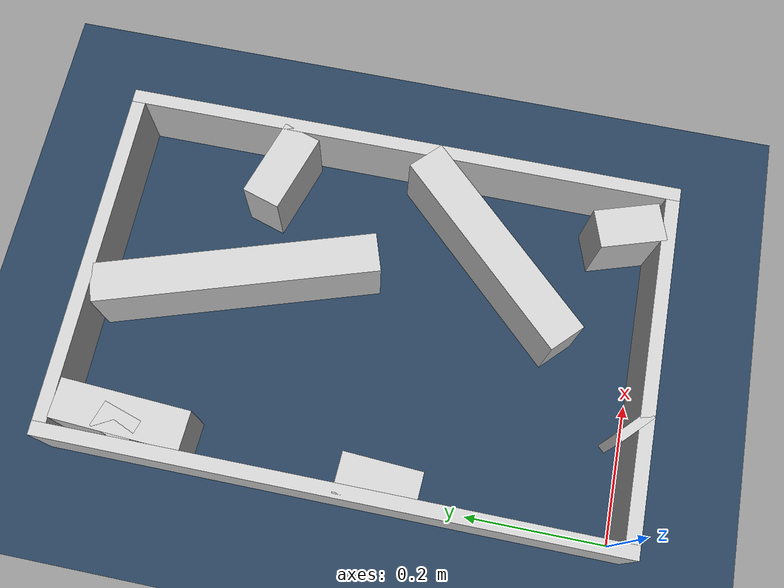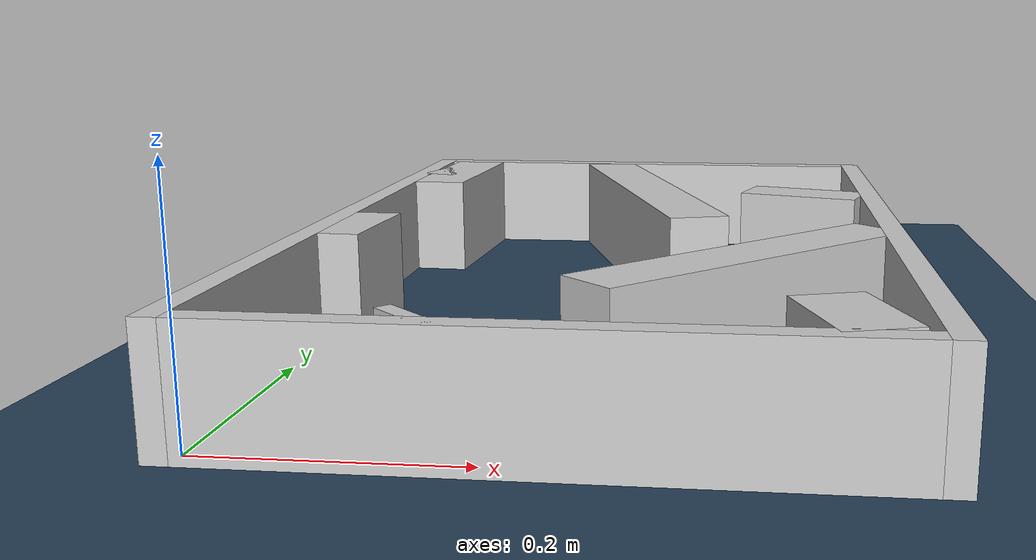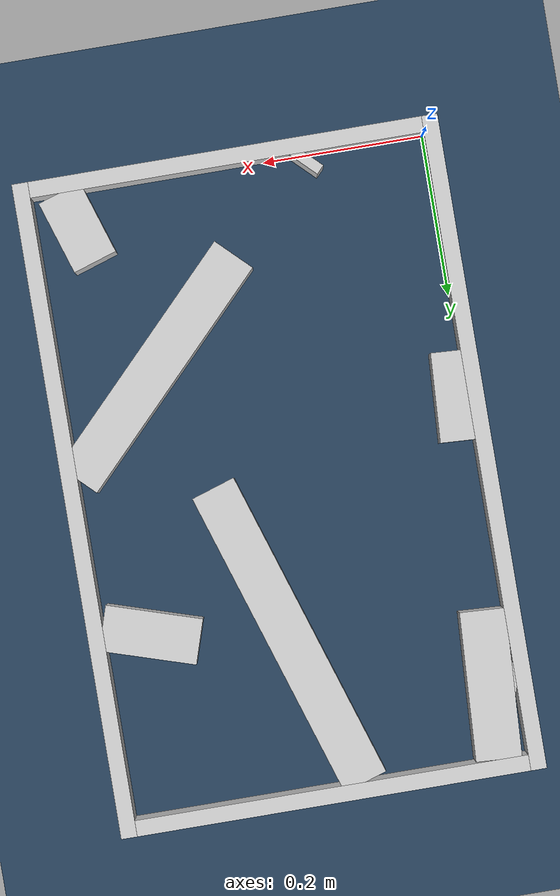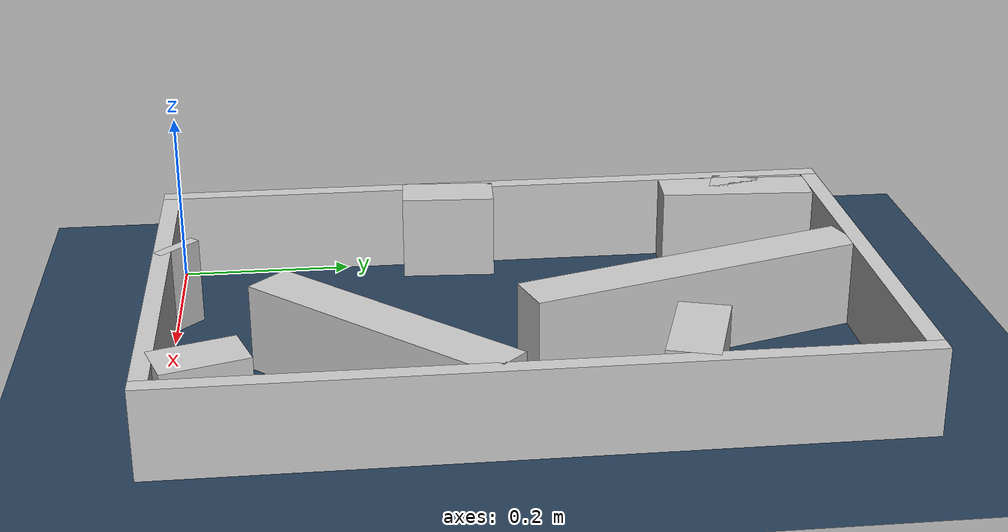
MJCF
<?xml version="1.0" ?>
<mujoco model="generated_real_template">
  <compiler angle="degree"/>
  <option timestep="0.002" integrator="implicitfast" iterations="100" cone="elliptic"/>
  <default>
    <geom density="1"/>
  </default>
  <asset>
    <texture builtin="gradient" height="3072" rgb1="0.3 0.5 0.7" rgb2="0 0 0" type="skybox" width="512"/>
    <texture builtin="checker" height="300" mark="edge" markrgb="0.8 0.8 0.8" name="groundplane" rgb1="0.2 0.3 0.4" rgb2="0.1 0.2 0.3" type="2d" width="300"/>
    <material name="groundplane" reflectance="0.2" texrepeat="5 5" texture="groundplane" texuniform="true"/>
  </asset>
  <worldbody>
    <light dir="0 0 -1" directional="true" pos="0 0 1.5"/>
    <geom name="floor" type="plane" condim="4" friction="0.5 0.005 0.001" material="groundplane" size="0 0 0.05"/>
    <body name="walls">
      <geom name="wall_boundary_left" type="box" condim="4" friction="1.0 0.005 0.0001" rgba="0.8 0.8 0.8 1" pos="-0.010000 0.387500 0.050000" euler="0 0 0.000000" size="0.010000 0.407500 0.050000"/>
      <geom name="wall_boundary_right" type="box" condim="4" friction="1.0 0.005 0.0001" rgba="0.8 0.8 0.8 1" pos="0.500000 0.387500 0.050000" euler="0 0 0.000000" size="0.010000 0.407500 0.050000"/>
      <geom name="wall_boundary_bottom" type="box" condim="4" friction="1.0 0.005 0.0001" rgba="0.8 0.8 0.8 1" pos="0.245000 -0.010000 0.050000" euler="0 0 0.000000" size="0.245000 0.010000 0.050000"/>
      <geom name="wall_boundary_top" type="box" condim="4" friction="1.0 0.005 0.0001" rgba="0.8 0.8 0.8 1" pos="0.245000 0.785000 0.050000" euler="0 0 0.000000" size="0.245000 0.010000 0.050000"/>
      <geom name="wall_inner_1_1" type="box" condim="4" friction="1.0 0.005 0.0001" rgba="0.8 0.8 0.8 1" pos="0.265207 0.581811 0.050000" euler="0 0 -72.042321" size="0.203082 0.028500 0.050000"/>
      <geom name="wall_inner_1_2" type="box" condim="4" friction="1.0 0.005 0.0001" rgba="0.8 0.8 0.8 1" pos="0.439104 0.045262 0.050000" euler="0 0 -72.042321" size="0.047579 0.028500 0.050000"/>
      <geom name="wall_inner_2_1" type="box" condim="4" friction="1.0 0.005 0.0001" rgba="0.8 0.8 0.8 1" pos="0.011512 0.326055 0.050000" euler="0 0 86.846922" size="0.055535 0.028500 0.050000"/>
      <geom name="wall_inner_2_2" type="box" condim="4" friction="1.0 0.005 0.0001" rgba="0.8 0.8 0.8 1" pos="0.031170 0.682890 0.050000" euler="0 0 86.846922" size="0.092250 0.028500 0.050000"/>
      <geom name="wall_inner_3_1" type="box" condim="4" friction="1.0 0.005 0.0001" rgba="0.8 0.8 0.8 1" pos="0.153356 0.004728 0.050000" euler="0 0 45.823832" size="0.006592 0.028500 0.050000"/>
      <geom name="wall_inner_3_2" type="box" condim="4" friction="1.0 0.005 0.0001" rgba="0.8 0.8 0.8 1" pos="0.372348 0.230110 0.050000" euler="0 0 45.823832" size="0.168196 0.028500 0.050000"/>
      <geom name="wall_inner_4_1" type="box" condim="4" friction="1.0 0.005 0.0001" rgba="0.8 0.8 0.8 1" pos="0.432448 0.553511 0.050000" euler="0 0 162.459134" size="0.060359 0.028500 0.050000"/>
      <geom name="wall_inner_4_2" type="box" condim="4" friction="1.0 0.005 0.0001" rgba="0.8 0.8 0.8 1" pos="0.018202 0.684447 0.050000" euler="0 0 162.459134" size="0.019090 0.028500 0.050000"/>
    </body>
  </worldbody>
</mujoco>
